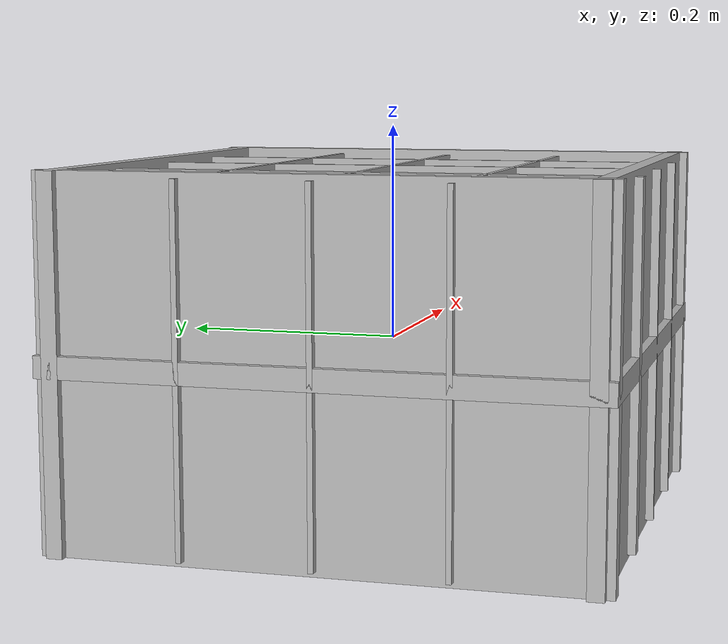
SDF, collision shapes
<?xml version='1.0'?>
<sdf version='1.6'>
  <model name='target_4x4'>
    <link name='link'>
      <self_collide>0</self_collide>
      <enable_wind>0</enable_wind>
      <kinematic>0</kinematic>
      <pose frame=''>0 0 0 0 -0 0</pose>
      <gravity>1</gravity>
      <inertial>
        <mass>1</mass>
        <pose frame=''>0 0 0 0 -0 0</pose>
        <inertia>
          <ixx>1</ixx>
          <ixy>0</ixy>
          <ixz>0</ixz>
          <iyy>1</iyy>
          <iyz>0</iyz>
          <izz>1</izz>
        </inertia>
      </inertial>
      <visual name='visual'>
        <pose frame=''>0 0 0.025 0 -0 0</pose>
        <geometry>
          <mesh>
            <scale>0.25 0.25 0.25</scale>
            <uri>model://target_4x4/meshes/target_4x4.dae</uri>
          </mesh>
        </geometry>
      </visual>
      <collision name='collision_4'>
        <laser_retro>0</laser_retro>
        <max_contacts>10</max_contacts>
        <pose frame=''>-0.235 0 0 0 -0 0</pose>
        <geometry>
          <box>
            <size>0.015 0.5 0.335</size>
          </box>
        </geometry>
        <surface>
          <friction>
            <ode>
              <mu>1</mu>
              <mu2>1</mu2>
              <fdir1>0 0 0</fdir1>
              <slip1>0</slip1>
              <slip2>0</slip2>
            </ode>
            <torsional>
              <coefficient>1</coefficient>
              <patch_radius>0</patch_radius>
              <surface_radius>0</surface_radius>
              <use_patch_radius>1</use_patch_radius>
              <ode>
                <slip>0</slip>
              </ode>
            </torsional>
          </friction>
          <bounce>
            <restitution_coefficient>0</restitution_coefficient>
            <threshold>1e+06</threshold>
          </bounce>
          <contact>
            <collide_without_contact>0</collide_without_contact>
            <collide_without_contact_bitmask>1</collide_without_contact_bitmask>
            <collide_bitmask>1</collide_bitmask>
            <ode>
              <soft_cfm>0</soft_cfm>
              <soft_erp>0.2</soft_erp>
              <kp>1e+13</kp>
              <kd>1</kd>
              <max_vel>0.01</max_vel>
              <min_depth>0</min_depth>
            </ode>
            <bullet>
              <split_impulse>1</split_impulse>
              <split_impulse_penetration_threshold>-0.01</split_impulse_penetration_threshold>
              <soft_cfm>0</soft_cfm>
              <soft_erp>0.2</soft_erp>
              <kp>1e+13</kp>
              <kd>1</kd>
            </bullet>
          </contact>
        </surface>
      </collision>
      <collision name='collision_5'>
        <laser_retro>0</laser_retro>
        <max_contacts>10</max_contacts>
        <pose frame=''>0.0025 0 0 0 -0 0</pose>
        <geometry>
          <box>
            <size>0.005 0.5 0.325</size>
          </box>
        </geometry>
        <surface>
          <friction>
            <ode>
              <mu>1</mu>
              <mu2>1</mu2>
              <fdir1>0 0 0</fdir1>
              <slip1>0</slip1>
              <slip2>0</slip2>
            </ode>
            <torsional>
              <coefficient>1</coefficient>
              <patch_radius>0</patch_radius>
              <surface_radius>0</surface_radius>
              <use_patch_radius>1</use_patch_radius>
              <ode>
                <slip>0</slip>
              </ode>
            </torsional>
          </friction>
          <bounce>
            <restitution_coefficient>0</restitution_coefficient>
            <threshold>1e+06</threshold>
          </bounce>
          <contact>
            <collide_without_contact>0</collide_without_contact>
            <collide_without_contact_bitmask>1</collide_without_contact_bitmask>
            <collide_bitmask>1</collide_bitmask>
            <ode>
              <soft_cfm>0</soft_cfm>
              <soft_erp>0.2</soft_erp>
              <kp>1e+13</kp>
              <kd>1</kd>
              <max_vel>0.01</max_vel>
              <min_depth>0</min_depth>
            </ode>
            <bullet>
              <split_impulse>1</split_impulse>
              <split_impulse_penetration_threshold>-0.01</split_impulse_penetration_threshold>
              <soft_cfm>0</soft_cfm>
              <soft_erp>0.2</soft_erp>
              <kp>1e+13</kp>
              <kd>1</kd>
            </bullet>
          </contact>
        </surface>
      </collision>
      <collision name='collision_6'>
        <laser_retro>0</laser_retro>
        <max_contacts>10</max_contacts>
        <pose frame=''>0.12 0 0 0 -0 0</pose>
        <geometry>
          <box>
            <size>0.005 0.5 0.325</size>
          </box>
        </geometry>
        <surface>
          <friction>
            <ode>
              <mu>1</mu>
              <mu2>1</mu2>
              <fdir1>0 0 0</fdir1>
              <slip1>0</slip1>
              <slip2>0</slip2>
            </ode>
            <torsional>
              <coefficient>1</coefficient>
              <patch_radius>0</patch_radius>
              <surface_radius>0</surface_radius>
              <use_patch_radius>1</use_patch_radius>
              <ode>
                <slip>0</slip>
              </ode>
            </torsional>
          </friction>
          <bounce>
            <restitution_coefficient>0</restitution_coefficient>
            <threshold>1e+06</threshold>
          </bounce>
          <contact>
            <collide_without_contact>0</collide_without_contact>
            <collide_without_contact_bitmask>1</collide_without_contact_bitmask>
            <collide_bitmask>1</collide_bitmask>
            <ode>
              <soft_cfm>0</soft_cfm>
              <soft_erp>0.2</soft_erp>
              <kp>1e+13</kp>
              <kd>1</kd>
              <max_vel>0.01</max_vel>
              <min_depth>0</min_depth>
            </ode>
            <bullet>
              <split_impulse>1</split_impulse>
              <split_impulse_penetration_threshold>-0.01</split_impulse_penetration_threshold>
              <soft_cfm>0</soft_cfm>
              <soft_erp>0.2</soft_erp>
              <kp>1e+13</kp>
              <kd>1</kd>
            </bullet>
          </contact>
        </surface>
      </collision>
      <collision name='collision_3'>
        <laser_retro>0</laser_retro>
        <max_contacts>10</max_contacts>
        <pose frame=''>0.235 0 0 0 -0 0</pose>
        <geometry>
          <box>
            <size>0.015 0.5 0.335</size>
          </box>
        </geometry>
        <surface>
          <friction>
            <ode>
              <mu>1</mu>
              <mu2>1</mu2>
              <fdir1>0 0 0</fdir1>
              <slip1>0</slip1>
              <slip2>0</slip2>
            </ode>
            <torsional>
              <coefficient>1</coefficient>
              <patch_radius>0</patch_radius>
              <surface_radius>0</surface_radius>
              <use_patch_radius>1</use_patch_radius>
              <ode>
                <slip>0</slip>
              </ode>
            </torsional>
          </friction>
          <bounce>
            <restitution_coefficient>0</restitution_coefficient>
            <threshold>1e+06</threshold>
          </bounce>
          <contact>
            <collide_without_contact>0</collide_without_contact>
            <collide_without_contact_bitmask>1</collide_without_contact_bitmask>
            <collide_bitmask>1</collide_bitmask>
            <ode>
              <soft_cfm>0</soft_cfm>
              <soft_erp>0.2</soft_erp>
              <kp>1e+13</kp>
              <kd>1</kd>
              <max_vel>0.01</max_vel>
              <min_depth>0</min_depth>
            </ode>
            <bullet>
              <split_impulse>1</split_impulse>
              <split_impulse_penetration_threshold>-0.01</split_impulse_penetration_threshold>
              <soft_cfm>0</soft_cfm>
              <soft_erp>0.2</soft_erp>
              <kp>1e+13</kp>
              <kd>1</kd>
            </bullet>
          </contact>
        </surface>
      </collision>
      <collision name='collision_1'>
        <laser_retro>0</laser_retro>
        <max_contacts>10</max_contacts>
        <pose frame=''>0 0.235 0 0 -0 0</pose>
        <geometry>
          <box>
            <size>0.5 0.015 0.335</size>
          </box>
        </geometry>
        <surface>
          <friction>
            <ode>
              <mu>1</mu>
              <mu2>1</mu2>
              <fdir1>0 0 0</fdir1>
              <slip1>0</slip1>
              <slip2>0</slip2>
            </ode>
            <torsional>
              <coefficient>1</coefficient>
              <patch_radius>0</patch_radius>
              <surface_radius>0</surface_radius>
              <use_patch_radius>1</use_patch_radius>
              <ode>
                <slip>0</slip>
              </ode>
            </torsional>
          </friction>
          <bounce>
            <restitution_coefficient>0</restitution_coefficient>
            <threshold>1e+06</threshold>
          </bounce>
          <contact>
            <collide_without_contact>0</collide_without_contact>
            <collide_without_contact_bitmask>1</collide_without_contact_bitmask>
            <collide_bitmask>1</collide_bitmask>
            <ode>
              <soft_cfm>0</soft_cfm>
              <soft_erp>0.2</soft_erp>
              <kp>1e+13</kp>
              <kd>1</kd>
              <max_vel>0.01</max_vel>
              <min_depth>0</min_depth>
            </ode>
            <bullet>
              <split_impulse>1</split_impulse>
              <split_impulse_penetration_threshold>-0.01</split_impulse_penetration_threshold>
              <soft_cfm>0</soft_cfm>
              <soft_erp>0.2</soft_erp>
              <kp>1e+13</kp>
              <kd>1</kd>
            </bullet>
          </contact>
        </surface>
      </collision>
      <collision name='collision_2'>
        <laser_retro>0</laser_retro>
        <max_contacts>10</max_contacts>
        <pose frame=''>0 -0.235 0 0 -0 0</pose>
        <geometry>
          <box>
            <size>0.5 0.015 0.335</size>
          </box>
        </geometry>
        <surface>
          <friction>
            <ode>
              <mu>1</mu>
              <mu2>1</mu2>
              <fdir1>0 0 0</fdir1>
              <slip1>0</slip1>
              <slip2>0</slip2>
            </ode>
            <torsional>
              <coefficient>1</coefficient>
              <patch_radius>0</patch_radius>
              <surface_radius>0</surface_radius>
              <use_patch_radius>1</use_patch_radius>
              <ode>
                <slip>0</slip>
              </ode>
            </torsional>
          </friction>
          <bounce>
            <restitution_coefficient>0</restitution_coefficient>
            <threshold>1e+06</threshold>
          </bounce>
          <contact>
            <collide_without_contact>0</collide_without_contact>
            <collide_without_contact_bitmask>1</collide_without_contact_bitmask>
            <collide_bitmask>1</collide_bitmask>
            <ode>
              <soft_cfm>0</soft_cfm>
              <soft_erp>0.2</soft_erp>
              <kp>1e+13</kp>
              <kd>1</kd>
              <max_vel>0.01</max_vel>
              <min_depth>0</min_depth>
            </ode>
            <bullet>
              <split_impulse>1</split_impulse>
              <split_impulse_penetration_threshold>-0.01</split_impulse_penetration_threshold>
              <soft_cfm>0</soft_cfm>
              <soft_erp>0.2</soft_erp>
              <kp>1e+13</kp>
              <kd>1</kd>
            </bullet>
          </contact>
        </surface>
      </collision>
      <collision name='collision_0'>
        <laser_retro>0</laser_retro>
        <max_contacts>10</max_contacts>
        <pose frame=''>0 0 0 0 -0 0</pose>
        <geometry>
          <box>
            <size>0.5 0.5 0.02</size>
          </box>
        </geometry>
        <surface>
          <friction>
            <ode>
              <mu>1</mu>
              <mu2>1</mu2>
              <fdir1>0 0 0</fdir1>
              <slip1>0</slip1>
              <slip2>0</slip2>
            </ode>
            <torsional>
              <coefficient>1</coefficient>
              <patch_radius>0</patch_radius>
              <surface_radius>0</surface_radius>
              <use_patch_radius>1</use_patch_radius>
              <ode>
                <slip>0</slip>
              </ode>
            </torsional>
          </friction>
          <bounce>
            <restitution_coefficient>0</restitution_coefficient>
            <threshold>1e+06</threshold>
          </bounce>
          <contact>
            <collide_without_contact>0</collide_without_contact>
            <collide_without_contact_bitmask>1</collide_without_contact_bitmask>
            <collide_bitmask>1</collide_bitmask>
            <ode>
              <soft_cfm>0</soft_cfm>
              <soft_erp>0.2</soft_erp>
              <kp>1e+13</kp>
              <kd>1</kd>
              <max_vel>0.01</max_vel>
              <min_depth>0</min_depth>
            </ode>
            <bullet>
              <split_impulse>1</split_impulse>
              <split_impulse_penetration_threshold>-0.01</split_impulse_penetration_threshold>
              <soft_cfm>0</soft_cfm>
              <soft_erp>0.2</soft_erp>
              <kp>1e+13</kp>
              <kd>1</kd>
            </bullet>
          </contact>
        </surface>
      </collision>
      <collision name='collision_7'>
        <laser_retro>0</laser_retro>
        <max_contacts>10</max_contacts>
        <pose frame=''>-0.115 0 0 0 -0 0</pose>
        <geometry>
          <box>
            <size>0.015 0.5 0.325</size>
          </box>
        </geometry>
        <surface>
          <friction>
            <ode>
              <mu>1</mu>
              <mu2>1</mu2>
              <fdir1>0 0 0</fdir1>
              <slip1>0</slip1>
              <slip2>0</slip2>
            </ode>
            <torsional>
              <coefficient>1</coefficient>
              <patch_radius>0</patch_radius>
              <surface_radius>0</surface_radius>
              <use_patch_radius>1</use_patch_radius>
              <ode>
                <slip>0</slip>
              </ode>
            </torsional>
          </friction>
          <bounce>
            <restitution_coefficient>0</restitution_coefficient>
            <threshold>1e+06</threshold>
          </bounce>
          <contact>
            <collide_without_contact>0</collide_without_contact>
            <collide_without_contact_bitmask>1</collide_without_contact_bitmask>
            <collide_bitmask>1</collide_bitmask>
            <ode>
              <soft_cfm>0</soft_cfm>
              <soft_erp>0.2</soft_erp>
              <kp>1e+13</kp>
              <kd>1</kd>
              <max_vel>0.01</max_vel>
              <min_depth>0</min_depth>
            </ode>
            <bullet>
              <split_impulse>1</split_impulse>
              <split_impulse_penetration_threshold>-0.01</split_impulse_penetration_threshold>
              <soft_cfm>0</soft_cfm>
              <soft_erp>0.2</soft_erp>
              <kp>1e+13</kp>
              <kd>1</kd>
            </bullet>
          </contact>
        </surface>
      </collision>
      <collision name='collision_8'>
        <laser_retro>0</laser_retro>
        <max_contacts>10</max_contacts>
        <pose frame=''>0 0.0025 0 0 -0 0</pose>
        <geometry>
          <box>
            <size>0.5 0.005 0.325</size>
          </box>
        </geometry>
        <surface>
          <friction>
            <ode>
              <mu>1</mu>
              <mu2>1</mu2>
              <fdir1>0 0 0</fdir1>
              <slip1>0</slip1>
              <slip2>0</slip2>
            </ode>
            <torsional>
              <coefficient>1</coefficient>
              <patch_radius>0</patch_radius>
              <surface_radius>0</surface_radius>
              <use_patch_radius>1</use_patch_radius>
              <ode>
                <slip>0</slip>
              </ode>
            </torsional>
          </friction>
          <bounce>
            <restitution_coefficient>0</restitution_coefficient>
            <threshold>1e+06</threshold>
          </bounce>
          <contact>
            <collide_without_contact>0</collide_without_contact>
            <collide_without_contact_bitmask>1</collide_without_contact_bitmask>
            <collide_bitmask>1</collide_bitmask>
            <ode>
              <soft_cfm>0</soft_cfm>
              <soft_erp>0.2</soft_erp>
              <kp>1e+13</kp>
              <kd>1</kd>
              <max_vel>0.01</max_vel>
              <min_depth>0</min_depth>
            </ode>
            <bullet>
              <split_impulse>1</split_impulse>
              <split_impulse_penetration_threshold>-0.01</split_impulse_penetration_threshold>
              <soft_cfm>0</soft_cfm>
              <soft_erp>0.2</soft_erp>
              <kp>1e+13</kp>
              <kd>1</kd>
            </bullet>
          </contact>
        </surface>
      </collision>
      <collision name='collision_9'>
        <laser_retro>0</laser_retro>
        <max_contacts>10</max_contacts>
        <pose frame=''>0 0.12 0 0 -0 0</pose>
        <geometry>
          <box>
            <size>0.5 0.005 0.325</size>
          </box>
        </geometry>
        <surface>
          <friction>
            <ode>
              <mu>1</mu>
              <mu2>1</mu2>
              <fdir1>0 0 0</fdir1>
              <slip1>0</slip1>
              <slip2>0</slip2>
            </ode>
            <torsional>
              <coefficient>1</coefficient>
              <patch_radius>0</patch_radius>
              <surface_radius>0</surface_radius>
              <use_patch_radius>1</use_patch_radius>
              <ode>
                <slip>0</slip>
              </ode>
            </torsional>
          </friction>
          <bounce>
            <restitution_coefficient>0</restitution_coefficient>
            <threshold>1e+06</threshold>
          </bounce>
          <contact>
            <collide_without_contact>0</collide_without_contact>
            <collide_without_contact_bitmask>1</collide_without_contact_bitmask>
            <collide_bitmask>1</collide_bitmask>
            <ode>
              <soft_cfm>0</soft_cfm>
              <soft_erp>0.2</soft_erp>
              <kp>1e+13</kp>
              <kd>1</kd>
              <max_vel>0.01</max_vel>
              <min_depth>0</min_depth>
            </ode>
            <bullet>
              <split_impulse>1</split_impulse>
              <split_impulse_penetration_threshold>-0.01</split_impulse_penetration_threshold>
              <soft_cfm>0</soft_cfm>
              <soft_erp>0.2</soft_erp>
              <kp>1e+13</kp>
              <kd>1</kd>
            </bullet>
          </contact>
        </surface>
      </collision>
      <collision name='collision_10'>
        <laser_retro>0</laser_retro>
        <max_contacts>10</max_contacts>
        <pose frame=''>0 -0.115 0 0 -0 0</pose>
        <geometry>
          <box>
            <size>0.5 0.005 0.325</size>
          </box>
        </geometry>
        <surface>
          <friction>
            <ode>
              <mu>1</mu>
              <mu2>1</mu2>
              <fdir1>0 0 0</fdir1>
              <slip1>0</slip1>
              <slip2>0</slip2>
            </ode>
            <torsional>
              <coefficient>1</coefficient>
              <patch_radius>0</patch_radius>
              <surface_radius>0</surface_radius>
              <use_patch_radius>1</use_patch_radius>
              <ode>
                <slip>0</slip>
              </ode>
            </torsional>
          </friction>
          <bounce>
            <restitution_coefficient>0</restitution_coefficient>
            <threshold>1e+06</threshold>
          </bounce>
          <contact>
            <collide_without_contact>0</collide_without_contact>
            <collide_without_contact_bitmask>1</collide_without_contact_bitmask>
            <collide_bitmask>1</collide_bitmask>
            <ode>
              <soft_cfm>0</soft_cfm>
              <soft_erp>0.2</soft_erp>
              <kp>1e+13</kp>
              <kd>1</kd>
              <max_vel>0.01</max_vel>
              <min_depth>0</min_depth>
            </ode>
            <bullet>
              <split_impulse>1</split_impulse>
              <split_impulse_penetration_threshold>-0.01</split_impulse_penetration_threshold>
              <soft_cfm>0</soft_cfm>
              <soft_erp>0.2</soft_erp>
              <kp>1e+13</kp>
              <kd>1</kd>
            </bullet>
          </contact>
        </surface>
      </collision>
    </link>
    <static>1</static>
    <allow_auto_disable>1</allow_auto_disable>
  </model>
</sdf>
